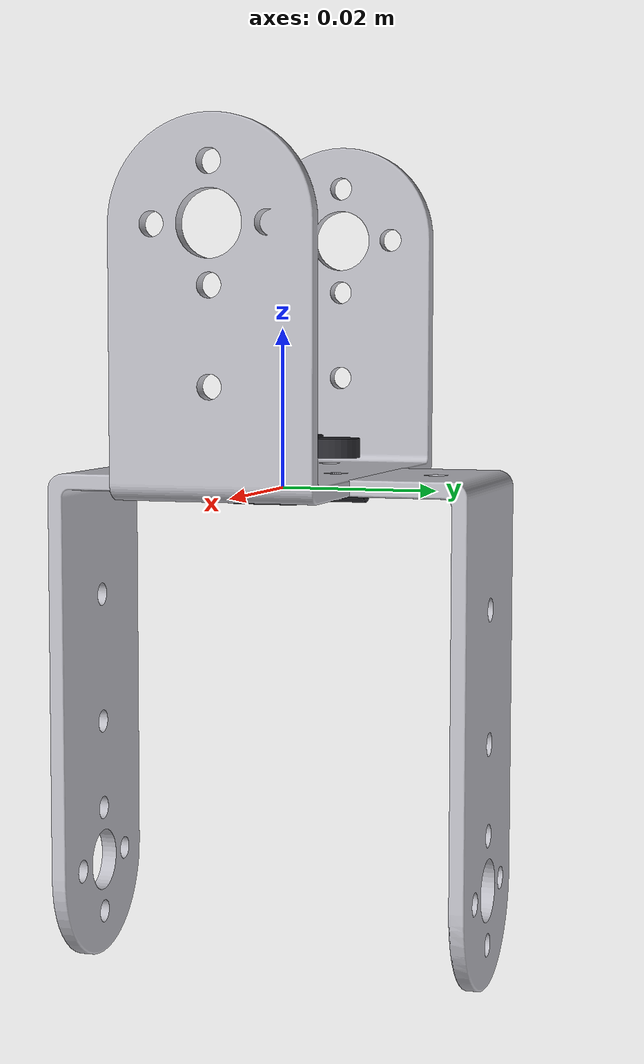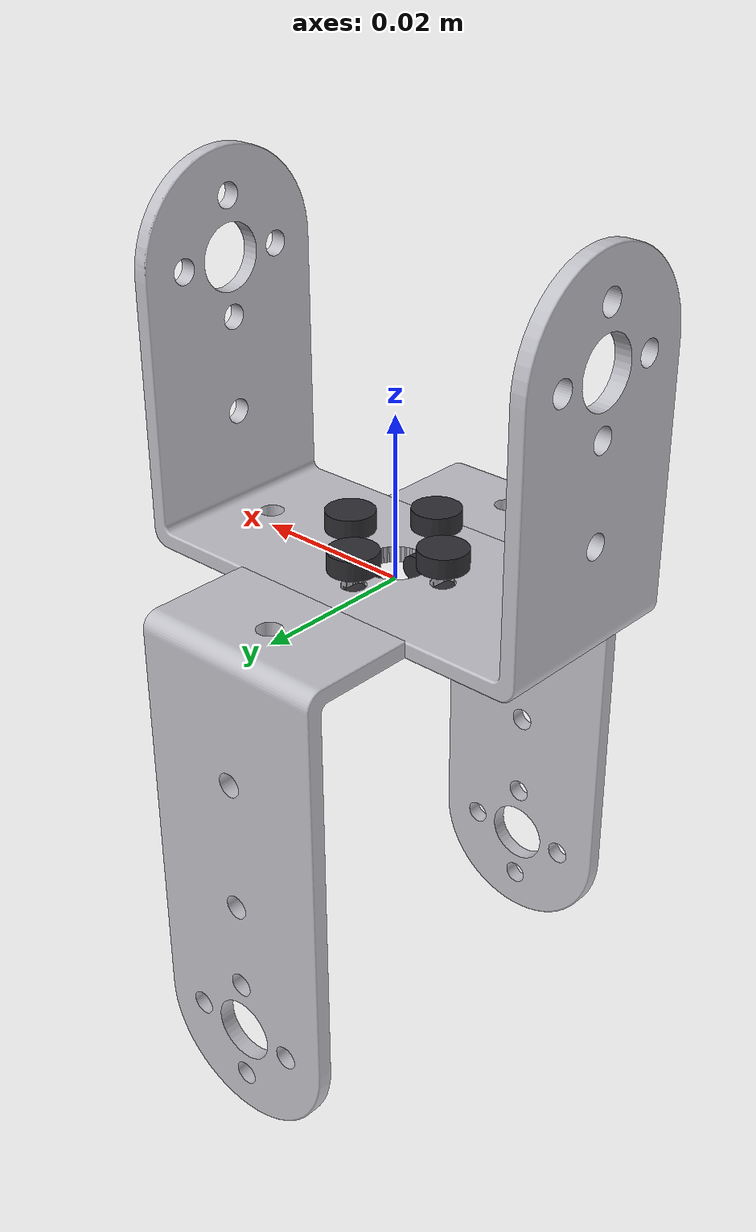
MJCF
<?xml version='1.0' encoding='utf-8'?>
<mujoco model="little_u_assembly_left">
  <compiler angle="radian" meshdir=".." autolimits="true"/>
  <visual>
    <global offwidth="1024" offheight="1024"/>
    <headlight ambient="0.55 0.55 0.55" diffuse="0.6 0.6 0.6" specular="0.2 0.2 0.2"/>
  </visual>
  <default>
    <default class="visual"><geom type="mesh" contype="0" conaffinity="0" group="2" density="0"/></default>
    <default class="collision"><geom type="mesh" group="3"/></default>
  </default>
  <asset>
    <mesh name="shortU" file="短U/短U支架.STL" scale="0.001 0.001 0.001"/>
    <mesh name="longU" file="长U/长U支架.STL" scale="0.001 0.001 0.001"/>
    <material name="bracket" rgba="0.75 0.75 0.78 1"/>
    <material name="dark" rgba="0.18 0.18 0.20 1"/>
  </asset>
  <worldbody>
    <!-- Upper 短U: opening up. raw bbox 0..54(X) x 0..44.5(Y height) x 0..25(Z depth). -->
    <body name="shortU_up" pos="0 0 0.02225" quat="0.7071068 0.7071068 0 0">
      <geom name="shortU_up_visual" mesh="shortU" class="visual" material="bracket" pos="-0.027 -0.02225 -0.0125"/>
      <geom name="shortU_up_collision" mesh="shortU" class="collision" pos="-0.027 -0.02225 -0.0125" density="2700"/>
    </body>

    <!-- Lower 长U: opening down, rotated 90 deg about the vertical -> perpendicular to upper. -->
    <body name="longU_down" pos="0 0 -0.03025" quat="0.5 -0.5 -0.5 0.5">
      <geom name="longU_down_visual" mesh="longU" class="visual" material="bracket" pos="-0.027 -0.03225 -0.0125"/>
      <geom name="longU_down_collision" mesh="longU" class="collision" pos="-0.027 -0.03225 -0.0125" density="2700"/>
    </body>

    <!-- M3 screws through the overlapping base holes (visual only). -->
    <geom name="screw_1" type="cylinder" size="0.0016 0.004" pos="0.007 0 0.0" quat="0.7071068 0.7071068 0 0" material="dark" contype="0" conaffinity="0" group="2"/>
    <geom name="screw_2" type="cylinder" size="0.0016 0.004" pos="-0.007 0 0.0" quat="0.7071068 0.7071068 0 0" material="dark" contype="0" conaffinity="0" group="2"/>
    <geom name="screw_3" type="cylinder" size="0.0016 0.004" pos="0 0.007 0.0" quat="0.7071068 0.7071068 0 0" material="dark" contype="0" conaffinity="0" group="2"/>
    <geom name="screw_4" type="cylinder" size="0.0016 0.004" pos="0 -0.007 0.0" quat="0.7071068 0.7071068 0 0" material="dark" contype="0" conaffinity="0" group="2"/>
    <geom name="nut_1" type="cylinder" size="0.003 0.0012" pos="0.007 0 0.0052" material="dark" contype="0" conaffinity="0" group="2"/>
    <geom name="nut_2" type="cylinder" size="0.003 0.0012" pos="-0.007 0 0.0052" material="dark" contype="0" conaffinity="0" group="2"/>
    <geom name="nut_3" type="cylinder" size="0.003 0.0012" pos="0 0.007 0.0052" material="dark" contype="0" conaffinity="0" group="2"/>
    <geom name="nut_4" type="cylinder" size="0.003 0.0012" pos="0 -0.007 0.0052" material="dark" contype="0" conaffinity="0" group="2"/>
  </worldbody>
</mujoco>
